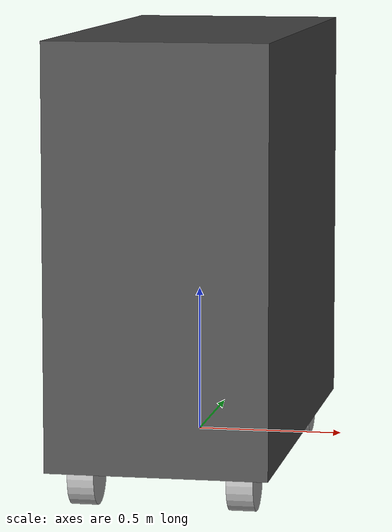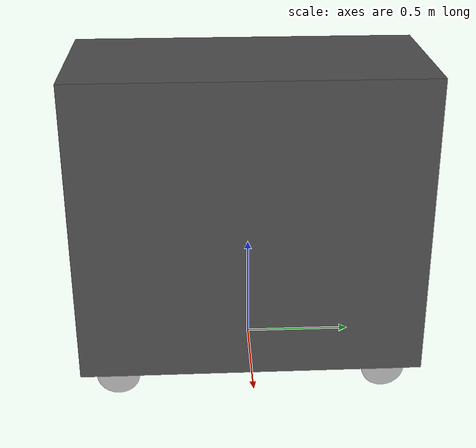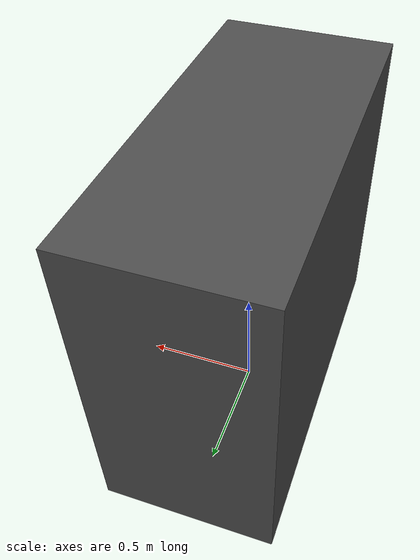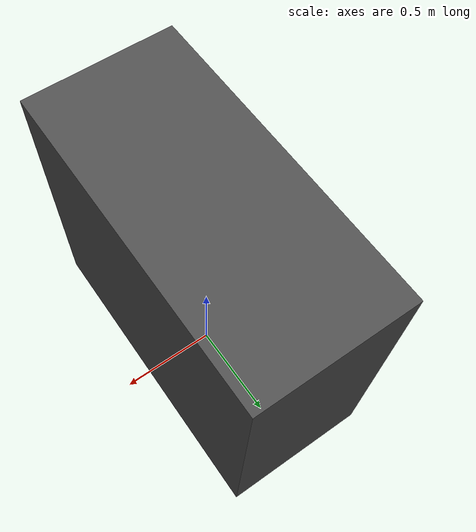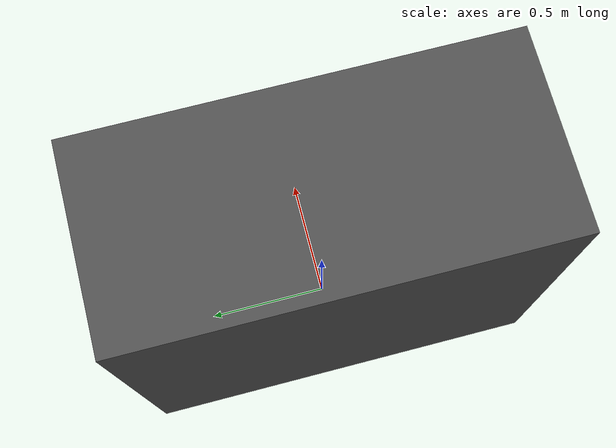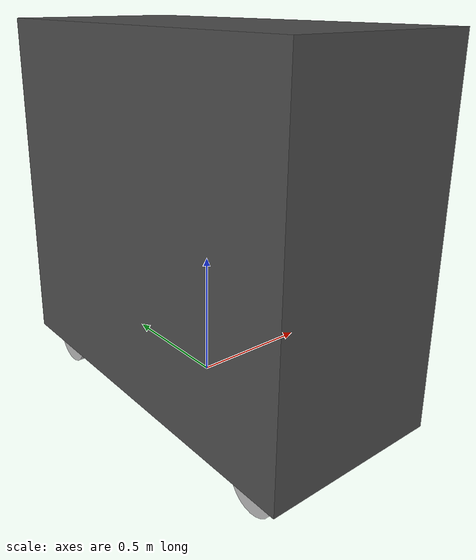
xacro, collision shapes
<?xml version="1.0" encoding="utf-8"?>

<robot name="megatrond" xmlns:xacro="http://www.ros.org/wiki/xacro">

  <!-- Begin - Include -->
  <xacro:include filename="$(find megatrond_description)/urdf/physics.xacro" />
  <xacro:include filename="$(find megatrond_description)/urdf/plugins.xacro" />
  <xacro:include filename="$(find megatrond_description)/urdf/_D435.urdf.xacro">
    <sensor_d435 parent="frnt_cam_lnk"></sensor_d435>
  </xacro:include>
  <!-- End - Include -->

  <link
  name="dummy">
  </link>
<!-- Base link -->
  <link
    name="base_lnk">
    <inertial>
      <origin
        xyz="-0.000972685832883347 3.12612398079004E-07 0.612414556322358"
        rpy="0 0 1.570795"/>
      <mass
        value="330" />
      <inertia
        ixx="194.051784427"
        ixy="-0.000002355"
        ixz="-0.222021371"
        iyy="240.950271196"
        iyz="-0.000003455"
        izz="84.156564733" />
    </inertial>
    <visual>
      <origin
        xyz="0 0 0"
        rpy="0 0 1.570795" />
      <geometry>
        <mesh
          filename="package://megatrond_description/meshes/base_lnk.STL" />
      </geometry>
      <material name="darkgray">
        <color rgba="0.3 0.3 0.3 1.0"/>
      </material>
    </visual>
    <collision>
      <origin
        xyz="0 0 0.705"
        rpy="0 0 1.570795" />
      <geometry>
        <box size="1.6 0.740 1.410"/>
      </geometry>
    </collision>
  </link>
  <joint name="dummy_joint" type="fixed">
     <parent link="dummy"/>
     <child link="base_lnk"/>
   </joint>

<!-- Front right wheel link -->
  <link
    name="flw_lnk">
    <inertial>
      <origin
        xyz="2.46838509088132E-06 0.000207503444381474 2.57153118754516E-06"
        rpy="0 0 0" />
      <mass
        value="2.344" />
      <inertia
        ixx="0.008294463"
        ixy="0.000000134"
        ixz="-0.000000111"
        iyy="0.013432708"
        iyz="-0.000000036"
        izz="0.00829408" />
    </inertial>
    <visual>
      <origin
        xyz="0 0 0"
        rpy="0 0 0" />
      <geometry>
        <mesh
          filename="package://megatrond_description/meshes/frw_lnk.STL" />
      </geometry>
      <material name="gray">
        <color rgba="0.7 0.7 0.7 1.0"/>
      </material>
    </visual>
    <collision>
      <origin
        xyz="0 0 0"
        rpy="1.57079632679 0 0" />
      <geometry>
        <cylinder radius="0.1015" length="0.089"/>
      </geometry>
    </collision>
  </link>

<!-- Front right wheel joint -->
  <joint
    name="flw_jnt"
    type="continuous">
    <origin
      xyz="-0.265 0.6305 -0.0333"
      rpy="0 0 1.570795" />
    <parent
      link="base_lnk" />
    <child
      link="flw_lnk" />
    <axis
      xyz="0 1 0" />
  </joint>

<!-- Front right wheel transmission -->
  <transmission name="frw_trans">
    <type>transmission_interface/SimpleTransmission</type>
    <joint name="frw_jnt">
      <hardwareInterface>hardware_interface/EffortJointInterface</hardwareInterface>
    </joint>
    <actuator name="frw_mtr">
      <hardwareInterface>hardware_interface/EffortJointInterface</hardwareInterface>
      <mechanicalReduction>1</mechanicalReduction>
    </actuator>
  </transmission>

<!-- Front left wheel link -->
  <link
    name="frw_lnk">
    <inertial>
      <origin
        xyz="1.5088754131698E-06 0.000432578966736485 4.69810776854152E-06"
        rpy="0 0 0" />
      <mass
        value="2.344" />
      <inertia
        ixx="0.008294463"
        ixy="0.000000134"
        ixz="-0.000000111"
        iyy="0.013432708"
        iyz="-0.000000036"
        izz="0.00829408"/>
    </inertial>
    <visual>
      <origin
        xyz="0 0 0"
        rpy="0 0 0" />
      <geometry>
        <mesh
          filename="package://megatrond_description/meshes/flw_lnk.STL" />
      </geometry>
      <material name="gray">
        <color rgba="0.7 0.7 0.7 1.0"/>
      </material>
    </visual>
    <collision>
      <origin
        xyz="0 0 0"
        rpy="1.57079632679 0 0" />
      <geometry>
        <cylinder radius="0.1015" length="0.089"/>
      </geometry>
    </collision>
  </link>

<!-- Front left wheel joint -->
  <joint
    name="frw_jnt"
    type="continuous">
    <origin
      xyz="0.265 0.6305 -0.0333"
      rpy="0 0 1.570795" />
    <parent
      link="base_lnk" />
    <child
      link="frw_lnk" />
    <axis
      xyz="0 1 0" />
  </joint>

<!-- Front left wheel transmission -->
  <transmission name="flw_trans">
    <type>transmission_interface/SimpleTransmission</type>
    <joint name="flw_jnt">
      <hardwareInterface>hardware_interface/EffortJointInterface</hardwareInterface>
    </joint>
    <actuator name="flw_mtr">
      <hardwareInterface>hardware_interface/EffortJointInterface</hardwareInterface>
      <mechanicalReduction>1</mechanicalReduction>
    </actuator>
  </transmission>

<!-- Rear right wheel link -->
  <link
    name="rlw_lnk">
    <inertial>
      <origin
        xyz="2.43278804989977E-06 0.000432579291648749 4.29250331829278E-06"
        rpy="0 0 0" />
      <mass
        value="2.344" />
      <inertia
        ixx="0.008294463"
        ixy="0.000000134"
        ixz="-0.000000111"
        iyy="0.013432708"
        iyz="-0.000000036"
        izz="0.00829408" />
    </inertial>
    <visual>
      <origin
        xyz="0 0 0"
        rpy="0 0 0" />
      <geometry>
        <mesh
          filename="package://megatrond_description/meshes/rrw_lnk.STL" />
      </geometry>
      <material name="gray">
        <color rgba="0.7 0.7 0.7 1.0"/>
      </material>
    </visual>
    <collision>
      <origin
        xyz="0 0 0"
        rpy="1.57079632679 0 0" />
      <geometry>
        <cylinder radius="0.1015" length="0.089"/>
      </geometry>
    </collision>
  </link>

<!-- Rear right wheel joint -->
  <joint
    name="rlw_jnt"
    type="continuous">
    <origin
      xyz="-0.265 -0.6305 -0.0333"
      rpy="0 0 1.570795" />
    <parent
      link="base_lnk" />
    <child
      link="rlw_lnk" />
    <axis
      xyz="0 1 0" />
  </joint>

<!-- Rear right wheel transmission -->
  <transmission name="rrw_trans">
    <type>transmission_interface/SimpleTransmission</type>
    <joint name="rrw_jnt">
      <hardwareInterface>hardware_interface/EffortJointInterface</hardwareInterface>
    </joint>
    <actuator name="rrw_mtr">
      <hardwareInterface>hardware_interface/EffortJointInterface</hardwareInterface>
      <mechanicalReduction>1</mechanicalReduction>
    </actuator>
  </transmission>

<!-- Rear left wheel link -->
  <link
    name="rrw_lnk">
    <inertial>
      <origin
        xyz="2.16054732371518E-06 0.000207503203965842 2.83462955391611E-06"
        rpy="0 0 0" />
      <mass
        value="2.344" />
      <inertia
        ixx="0.008294463"
        ixy="0.000000134"
        ixz="-0.000000111"
        iyy="0.013432708"
        iyz="-0.000000036"
        izz="0.00829408" />
    </inertial>
    <visual>
      <origin
        xyz="0 0 0"
        rpy="0 0 0" />
      <geometry>
        <mesh
          filename="package://megatrond_description/meshes/rlw_lnk.STL" />
      </geometry>
      <material name="gray">
        <color rgba="0.7 0.7 0.7 1.0"/>
      </material>
    </visual>
    <collision>
      <origin
        xyz="0 0 0"
        rpy="1.57079632679 0 0" />
      <geometry>
        <cylinder radius="0.1015" length="0.089"/>
      </geometry>
    </collision>
  </link>

<!-- Rear left wheel joint -->
  <joint
    name="rrw_jnt"
    type="continuous">
    <origin
      xyz="0.265 -0.6305 -0.0333"
      rpy="0 0 1.570795" />
    <parent
      link="base_lnk" />
    <child
      link="rrw_lnk" />
    <axis
      xyz="0 1 0" />
  </joint>

<!-- Rear left wheel transmission -->
  <transmission name="rlw_trans">
    <type>transmission_interface/SimpleTransmission</type>
    <joint name="rlw_jnt">
      <hardwareInterface>hardware_interface/EffortJointInterface</hardwareInterface>
    </joint>
    <actuator name="rlw_mtr">
      <hardwareInterface>hardware_interface/EffortJointInterface</hardwareInterface>
      <mechanicalReduction>1</mechanicalReduction>
    </actuator>
  </transmission>

<!-- Front camera link -->
  <link
    name="frnt_cam_lnk">
  </link>
  <joint
    name="frnt_cam_jnt"
    type="fixed">
    <origin
      xyz="0 0.80168 -0.012756"
      rpy="0 0 1.570795" />
    <parent
      link="base_lnk" />
    <child
      link="frnt_cam_lnk" />
    <axis
      xyz="0 0 0" />
  </joint>

</robot>
